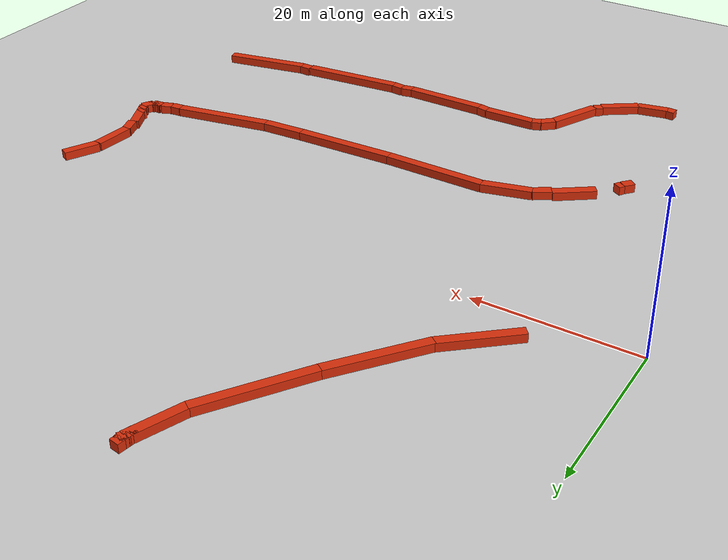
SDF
<sdf version="1.6">
 <world name="default">
  <include><uri>model://ground_plane</uri></include>
  <model name="track_inner_guardrail">
   <static>true</static>
   <link name="seg_025">
    <pose>14.11 -30.42 0.55 0 0 0.8469</pose>
    <collision name="col"><geometry><box><size>1.45 1.20 1.1</size></box></geometry></collision>
    <visual name="vis">
     <geometry><box><size>1.45 1.20 1.1</size></box></geometry>
     <material>
      <ambient>0.35 0.08 0.02 1</ambient>
      <diffuse>0.85 0.18 0.04 1</diffuse>
      <specular>0.2 0.2 0.2 1</specular>
     </material>
    </visual>
   </link>
   <link name="seg_038">
    <pose>14.81 -29.48 0.55 0 0 -2.1153</pose>
    <collision name="col"><geometry><box><size>0.79 1.20 1.1</size></box></geometry></collision>
    <visual name="vis">
     <geometry><box><size>0.79 1.20 1.1</size></box></geometry>
     <material>
      <ambient>0.35 0.08 0.02 1</ambient>
      <diffuse>0.85 0.18 0.04 1</diffuse>
      <specular>0.2 0.2 0.2 1</specular>
     </material>
    </visual>
   </link>
   <link name="seg_054">
    <pose>19.08 -25.47 0.55 0 0 0.6311</pose>
    <collision name="col"><geometry><box><size>5.49 1.20 1.1</size></box></geometry></collision>
    <visual name="vis">
     <geometry><box><size>5.49 1.20 1.1</size></box></geometry>
     <material>
      <ambient>0.35 0.08 0.02 1</ambient>
      <diffuse>0.85 0.18 0.04 1</diffuse>
      <specular>0.2 0.2 0.2 1</specular>
     </material>
    </visual>
   </link>
   <link name="seg_055">
    <pose>22.42 -23.45 0.55 0 0 0.5600</pose>
    <collision name="col"><geometry><box><size>2.43 1.20 1.1</size></box></geometry></collision>
    <visual name="vis">
     <geometry><box><size>2.43 1.20 1.1</size></box></geometry>
     <material>
      <ambient>0.35 0.08 0.02 1</ambient>
      <diffuse>0.85 0.18 0.04 1</diffuse>
      <specular>0.2 0.2 0.2 1</specular>
     </material>
    </visual>
   </link>
   <link name="seg_056">
    <pose>26.50 -22.02 0.55 0 0 0.2502</pose>
    <collision name="col"><geometry><box><size>6.42 1.20 1.1</size></box></geometry></collision>
    <visual name="vis">
     <geometry><box><size>6.42 1.20 1.1</size></box></geometry>
     <material>
      <ambient>0.35 0.08 0.02 1</ambient>
      <diffuse>0.85 0.18 0.04 1</diffuse>
      <specular>0.2 0.2 0.2 1</specular>
     </material>
    </visual>
   </link>
   <link name="seg_057">
    <pose>36.24 -21.32 0.55 0 0 -0.0123</pose>
    <collision name="col"><geometry><box><size>13.50 1.20 1.1</size></box></geometry></collision>
    <visual name="vis">
     <geometry><box><size>13.50 1.20 1.1</size></box></geometry>
     <material>
      <ambient>0.35 0.08 0.02 1</ambient>
      <diffuse>0.85 0.18 0.04 1</diffuse>
      <specular>0.2 0.2 0.2 1</specular>
     </material>
    </visual>
   </link>
   <link name="seg_058">
    <pose>49.57 -21.20 0.55 0 0 0.0306</pose>
    <collision name="col"><geometry><box><size>13.40 1.20 1.1</size></box></geometry></collision>
    <visual name="vis">
     <geometry><box><size>13.40 1.20 1.1</size></box></geometry>
     <material>
      <ambient>0.35 0.08 0.02 1</ambient>
      <diffuse>0.85 0.18 0.04 1</diffuse>
      <specular>0.2 0.2 0.2 1</specular>
     </material>
    </visual>
   </link>
   <link name="seg_059">
    <pose>58.99 -20.84 0.55 0 0 0.0556</pose>
    <collision name="col"><geometry><box><size>5.57 1.20 1.1</size></box></geometry></collision>
    <visual name="vis">
     <geometry><box><size>5.57 1.20 1.1</size></box></geometry>
     <material>
      <ambient>0.35 0.08 0.02 1</ambient>
      <diffuse>0.85 0.18 0.04 1</diffuse>
      <specular>0.2 0.2 0.2 1</specular>
     </material>
    </visual>
   </link>
   <link name="seg_060">
    <pose>68.11 -19.48 0.55 0 0 0.1882</pose>
    <collision name="col"><geometry><box><size>12.91 1.20 1.1</size></box></geometry></collision>
    <visual name="vis">
     <geometry><box><size>12.91 1.20 1.1</size></box></geometry>
     <material>
      <ambient>0.35 0.08 0.02 1</ambient>
      <diffuse>0.85 0.18 0.04 1</diffuse>
      <specular>0.2 0.2 0.2 1</specular>
     </material>
    </visual>
   </link>
   <link name="seg_061">
    <pose>75.18 -18.21 0.55 0 0 0.0849</pose>
    <collision name="col"><geometry><box><size>1.46 1.20 1.1</size></box></geometry></collision>
    <visual name="vis">
     <geometry><box><size>1.46 1.20 1.1</size></box></geometry>
     <material>
      <ambient>0.35 0.08 0.02 1</ambient>
      <diffuse>0.85 0.18 0.04 1</diffuse>
      <specular>0.2 0.2 0.2 1</specular>
     </material>
    </visual>
   </link>
   <link name="seg_062">
    <pose>76.58 -17.85 0.55 0 0 0.4251</pose>
    <collision name="col"><geometry><box><size>1.47 1.20 1.1</size></box></geometry></collision>
    <visual name="vis">
     <geometry><box><size>1.47 1.20 1.1</size></box></geometry>
     <material>
      <ambient>0.35 0.08 0.02 1</ambient>
      <diffuse>0.85 0.18 0.04 1</diffuse>
      <specular>0.2 0.2 0.2 1</specular>
     </material>
    </visual>
   </link>
   <link name="seg_063">
    <pose>77.98 -17.48 0.55 0 0 0.0821</pose>
    <collision name="col"><geometry><box><size>1.47 1.20 1.1</size></box></geometry></collision>
    <visual name="vis">
     <geometry><box><size>1.47 1.20 1.1</size></box></geometry>
     <material>
      <ambient>0.35 0.08 0.02 1</ambient>
      <diffuse>0.85 0.18 0.04 1</diffuse>
      <specular>0.2 0.2 0.2 1</specular>
     </material>
    </visual>
   </link>
   <link name="seg_065">
    <pose>78.41 -14.64 0.55 0 0 -1.7864</pose>
    <collision name="col"><geometry><box><size>0.67 1.20 1.1</size></box></geometry></collision>
    <visual name="vis">
     <geometry><box><size>0.67 1.20 1.1</size></box></geometry>
     <material>
      <ambient>0.35 0.08 0.02 1</ambient>
      <diffuse>0.85 0.18 0.04 1</diffuse>
      <specular>0.2 0.2 0.2 1</specular>
     </material>
    </visual>
   </link>
   <link name="seg_066">
    <pose>78.95 -15.54 0.55 0 0 -1.7864</pose>
    <collision name="col"><geometry><box><size>0.67 1.20 1.1</size></box></geometry></collision>
    <visual name="vis">
     <geometry><box><size>0.67 1.20 1.1</size></box></geometry>
     <material>
      <ambient>0.35 0.08 0.02 1</ambient>
      <diffuse>0.85 0.18 0.04 1</diffuse>
      <specular>0.2 0.2 0.2 1</specular>
     </material>
    </visual>
   </link>
   <link name="seg_068">
    <pose>78.60 -17.14 0.55 0 0 -1.7864</pose>
    <collision name="col"><geometry><box><size>0.67 1.20 1.1</size></box></geometry></collision>
    <visual name="vis">
     <geometry><box><size>0.67 1.20 1.1</size></box></geometry>
     <material>
      <ambient>0.35 0.08 0.02 1</ambient>
      <diffuse>0.85 0.18 0.04 1</diffuse>
      <specular>0.2 0.2 0.2 1</specular>
     </material>
    </visual>
   </link>
   <link name="seg_069">
    <pose>77.83 -17.30 0.55 0 0 -1.7864</pose>
    <collision name="col"><geometry><box><size>0.67 1.20 1.1</size></box></geometry></collision>
    <visual name="vis">
     <geometry><box><size>0.67 1.20 1.1</size></box></geometry>
     <material>
      <ambient>0.35 0.08 0.02 1</ambient>
      <diffuse>0.85 0.18 0.04 1</diffuse>
      <specular>0.2 0.2 0.2 1</specular>
     </material>
    </visual>
   </link>
   <link name="seg_070">
    <pose>79.11 -16.61 0.55 0 0 1.0440</pose>
    <collision name="col"><geometry><box><size>1.47 1.20 1.1</size></box></geometry></collision>
    <visual name="vis">
     <geometry><box><size>1.47 1.20 1.1</size></box></geometry>
     <material>
      <ambient>0.35 0.08 0.02 1</ambient>
      <diffuse>0.85 0.18 0.04 1</diffuse>
      <specular>0.2 0.2 0.2 1</specular>
     </material>
    </visual>
   </link>
   <link name="seg_071">
    <pose>78.22 -13.88 0.55 0 0 2.0104</pose>
    <collision name="col"><geometry><box><size>5.07 1.20 1.1</size></box></geometry></collision>
    <visual name="vis">
     <geometry><box><size>5.07 1.20 1.1</size></box></geometry>
     <material>
      <ambient>0.35 0.08 0.02 1</ambient>
      <diffuse>0.85 0.18 0.04 1</diffuse>
      <specular>0.2 0.2 0.2 1</specular>
     </material>
    </visual>
   </link>
   <link name="seg_072">
    <pose>77.04 -10.53 0.55 0 0 1.9129</pose>
    <collision name="col"><geometry><box><size>2.26 1.20 1.1</size></box></geometry></collision>
    <visual name="vis">
     <geometry><box><size>2.26 1.20 1.1</size></box></geometry>
     <material>
      <ambient>0.35 0.08 0.02 1</ambient>
      <diffuse>0.85 0.18 0.04 1</diffuse>
      <specular>0.2 0.2 0.2 1</specular>
     </material>
    </visual>
   </link>
   <link name="seg_073">
    <pose>76.90 -7.02 0.55 0 0 1.4836</pose>
    <collision name="col"><geometry><box><size>5.14 1.20 1.1</size></box></geometry></collision>
    <visual name="vis">
     <geometry><box><size>5.14 1.20 1.1</size></box></geometry>
     <material>
      <ambient>0.35 0.08 0.02 1</ambient>
      <diffuse>0.85 0.18 0.04 1</diffuse>
      <specular>0.2 0.2 0.2 1</specular>
     </material>
    </visual>
   </link>
   <link name="seg_074">
    <pose>78.13 -2.39 0.55 0 0 1.1110</pose>
    <collision name="col"><geometry><box><size>4.65 1.20 1.1</size></box></geometry></collision>
    <visual name="vis">
     <geometry><box><size>4.65 1.20 1.1</size></box></geometry>
     <material>
      <ambient>0.35 0.08 0.02 1</ambient>
      <diffuse>0.85 0.18 0.04 1</diffuse>
      <specular>0.2 0.2 0.2 1</specular>
     </material>
    </visual>
   </link>
   <link name="seg_130">
    <pose>36.12 36.92 0.55 0 0 -2.1415</pose>
    <collision name="col"><geometry><box><size>0.72 1.20 1.1</size></box></geometry></collision>
    <visual name="vis">
     <geometry><box><size>0.72 1.20 1.1</size></box></geometry>
     <material>
      <ambient>0.35 0.08 0.02 1</ambient>
      <diffuse>0.85 0.18 0.04 1</diffuse>
      <specular>0.2 0.2 0.2 1</specular>
     </material>
    </visual>
   </link>
   <link name="seg_131">
    <pose>35.94 36.52 0.55 0 0 -1.6311</pose>
    <collision name="col"><geometry><box><size>0.43 1.20 1.1</size></box></geometry></collision>
    <visual name="vis">
     <geometry><box><size>0.43 1.20 1.1</size></box></geometry>
     <material>
      <ambient>0.35 0.08 0.02 1</ambient>
      <diffuse>0.85 0.18 0.04 1</diffuse>
      <specular>0.2 0.2 0.2 1</specular>
     </material>
    </visual>
   </link>
   <link name="seg_132">
    <pose>35.89 36.18 0.55 0 0 -1.8319</pose>
    <collision name="col"><geometry><box><size>0.49 1.20 1.1</size></box></geometry></collision>
    <visual name="vis">
     <geometry><box><size>0.49 1.20 1.1</size></box></geometry>
     <material>
      <ambient>0.35 0.08 0.02 1</ambient>
      <diffuse>0.85 0.18 0.04 1</diffuse>
      <specular>0.2 0.2 0.2 1</specular>
     </material>
    </visual>
   </link>
   <link name="seg_133">
    <pose>35.79 35.82 0.55 0 0 -1.8319</pose>
    <collision name="col"><geometry><box><size>0.49 1.20 1.1</size></box></geometry></collision>
    <visual name="vis">
     <geometry><box><size>0.49 1.20 1.1</size></box></geometry>
     <material>
      <ambient>0.35 0.08 0.02 1</ambient>
      <diffuse>0.85 0.18 0.04 1</diffuse>
      <specular>0.2 0.2 0.2 1</specular>
     </material>
    </visual>
   </link>
   <link name="seg_134">
    <pose>35.67 35.60 0.55 0 0 -2.5728</pose>
    <collision name="col"><geometry><box><size>0.18 1.20 1.1</size></box></geometry></collision>
    <visual name="vis">
     <geometry><box><size>0.18 1.20 1.1</size></box></geometry>
     <material>
      <ambient>0.35 0.08 0.02 1</ambient>
      <diffuse>0.85 0.18 0.04 1</diffuse>
      <specular>0.2 0.2 0.2 1</specular>
     </material>
    </visual>
   </link>
   <link name="seg_147">
    <pose>35.95 36.58 0.55 0 0 1.4113</pose>
    <collision name="col"><geometry><box><size>1.01 1.20 1.1</size></box></geometry></collision>
    <visual name="vis">
     <geometry><box><size>1.01 1.20 1.1</size></box></geometry>
     <material>
      <ambient>0.35 0.08 0.02 1</ambient>
      <diffuse>0.85 0.18 0.04 1</diffuse>
      <specular>0.2 0.2 0.2 1</specular>
     </material>
    </visual>
   </link>
   <link name="seg_148">
    <pose>36.09 37.45 0.55 0 0 1.4113</pose>
    <collision name="col"><geometry><box><size>1.01 1.20 1.1</size></box></geometry></collision>
    <visual name="vis">
     <geometry><box><size>1.01 1.20 1.1</size></box></geometry>
     <material>
      <ambient>0.35 0.08 0.02 1</ambient>
      <diffuse>0.85 0.18 0.04 1</diffuse>
      <specular>0.2 0.2 0.2 1</specular>
     </material>
    </visual>
   </link>
   <link name="seg_166">
    <pose>36.10 37.09 0.55 0 0 -1.5708</pose>
    <collision name="col"><geometry><box><size>0.74 1.20 1.1</size></box></geometry></collision>
    <visual name="vis">
     <geometry><box><size>0.74 1.20 1.1</size></box></geometry>
     <material>
      <ambient>0.35 0.08 0.02 1</ambient>
      <diffuse>0.85 0.18 0.04 1</diffuse>
      <specular>0.2 0.2 0.2 1</specular>
     </material>
    </visual>
   </link>
   <link name="seg_167">
    <pose>34.93 33.59 0.55 0 0 -1.9290</pose>
    <collision name="col"><geometry><box><size>6.78 1.20 1.1</size></box></geometry></collision>
    <visual name="vis">
     <geometry><box><size>6.78 1.20 1.1</size></box></geometry>
     <material>
      <ambient>0.35 0.08 0.02 1</ambient>
      <diffuse>0.85 0.18 0.04 1</diffuse>
      <specular>0.2 0.2 0.2 1</specular>
     </material>
    </visual>
   </link>
   <link name="seg_168">
    <pose>30.05 24.94 0.55 0 0 -2.1610</pose>
    <collision name="col"><geometry><box><size>13.45 1.20 1.1</size></box></geometry></collision>
    <visual name="vis">
     <geometry><box><size>13.45 1.20 1.1</size></box></geometry>
     <material>
      <ambient>0.35 0.08 0.02 1</ambient>
      <diffuse>0.85 0.18 0.04 1</diffuse>
      <specular>0.2 0.2 0.2 1</specular>
     </material>
    </visual>
   </link>
   <link name="seg_169">
    <pose>22.66 14.58 0.55 0 0 -2.2231</pose>
    <collision name="col"><geometry><box><size>12.24 1.20 1.1</size></box></geometry></collision>
    <visual name="vis">
     <geometry><box><size>12.24 1.20 1.1</size></box></geometry>
     <material>
      <ambient>0.35 0.08 0.02 1</ambient>
      <diffuse>0.85 0.18 0.04 1</diffuse>
      <specular>0.2 0.2 0.2 1</specular>
     </material>
    </visual>
   </link>
   <link name="seg_170">
    <pose>15.33 6.60 0.55 0 0 -2.4264</pose>
    <collision name="col"><geometry><box><size>9.79 1.20 1.1</size></box></geometry></collision>
    <visual name="vis">
     <geometry><box><size>9.79 1.20 1.1</size></box></geometry>
     <material>
      <ambient>0.35 0.08 0.02 1</ambient>
      <diffuse>0.85 0.18 0.04 1</diffuse>
      <specular>0.2 0.2 0.2 1</specular>
     </material>
    </visual>
   </link>
  </model>
  <model name="track_outer_guardrail">
   <static>true</static>
   <link name="seg_015">
    <pose>16.49 -52.47 0.55 0 0 -0.0766</pose>
    <collision name="col"><geometry><box><size>1.19 1.20 1.1</size></box></geometry></collision>
    <visual name="vis">
     <geometry><box><size>1.19 1.20 1.1</size></box></geometry>
     <material>
      <ambient>0.35 0.08 0.02 1</ambient>
      <diffuse>0.85 0.18 0.04 1</diffuse>
      <specular>0.2 0.2 0.2 1</specular>
     </material>
    </visual>
   </link>
   <link name="seg_016">
    <pose>18.97 -52.12 0.55 0 0 0.1999</pose>
    <collision name="col"><geometry><box><size>4.09 1.20 1.1</size></box></geometry></collision>
    <visual name="vis">
     <geometry><box><size>4.09 1.20 1.1</size></box></geometry>
     <material>
      <ambient>0.35 0.08 0.02 1</ambient>
      <diffuse>0.85 0.18 0.04 1</diffuse>
      <specular>0.2 0.2 0.2 1</specular>
     </material>
    </visual>
   </link>
   <link name="seg_017">
    <pose>23.06 -50.26 0.55 0 0 0.6083</pose>
    <collision name="col"><geometry><box><size>5.17 1.20 1.1</size></box></geometry></collision>
    <visual name="vis">
     <geometry><box><size>5.17 1.20 1.1</size></box></geometry>
     <material>
      <ambient>0.35 0.08 0.02 1</ambient>
      <diffuse>0.85 0.18 0.04 1</diffuse>
      <specular>0.2 0.2 0.2 1</specular>
     </material>
    </visual>
   </link>
   <link name="seg_018">
    <pose>25.44 -48.28 0.55 0 0 0.6561</pose>
    <collision name="col"><geometry><box><size>1.14 1.20 1.1</size></box></geometry></collision>
    <visual name="vis">
     <geometry><box><size>1.14 1.20 1.1</size></box></geometry>
     <material>
      <ambient>0.35 0.08 0.02 1</ambient>
      <diffuse>0.85 0.18 0.04 1</diffuse>
      <specular>0.2 0.2 0.2 1</specular>
     </material>
    </visual>
   </link>
   <link name="seg_019">
    <pose>27.46 -44.66 0.55 0 0 1.1328</pose>
    <collision name="col"><geometry><box><size>7.25 1.20 1.1</size></box></geometry></collision>
    <visual name="vis">
     <geometry><box><size>7.25 1.20 1.1</size></box></geometry>
     <material>
      <ambient>0.35 0.08 0.02 1</ambient>
      <diffuse>0.85 0.18 0.04 1</diffuse>
      <specular>0.2 0.2 0.2 1</specular>
     </material>
    </visual>
   </link>
   <link name="seg_020">
    <pose>29.68 -40.82 0.55 0 0 0.7172</pose>
    <collision name="col"><geometry><box><size>2.00 1.20 1.1</size></box></geometry></collision>
    <visual name="vis">
     <geometry><box><size>2.00 1.20 1.1</size></box></geometry>
     <material>
      <ambient>0.35 0.08 0.02 1</ambient>
      <diffuse>0.85 0.18 0.04 1</diffuse>
      <specular>0.2 0.2 0.2 1</specular>
     </material>
    </visual>
   </link>
   <link name="seg_021">
    <pose>30.88 -40.01 0.55 0 0 0.3690</pose>
    <collision name="col"><geometry><box><size>1.18 1.20 1.1</size></box></geometry></collision>
    <visual name="vis">
     <geometry><box><size>1.18 1.20 1.1</size></box></geometry>
     <material>
      <ambient>0.35 0.08 0.02 1</ambient>
      <diffuse>0.85 0.18 0.04 1</diffuse>
      <specular>0.2 0.2 0.2 1</specular>
     </material>
    </visual>
   </link>
   <link name="seg_022">
    <pose>34.75 -39.77 0.55 0 0 0.0143</pose>
    <collision name="col"><geometry><box><size>6.74 1.20 1.1</size></box></geometry></collision>
    <visual name="vis">
     <geometry><box><size>6.74 1.20 1.1</size></box></geometry>
     <material>
      <ambient>0.35 0.08 0.02 1</ambient>
      <diffuse>0.85 0.18 0.04 1</diffuse>
      <specular>0.2 0.2 0.2 1</specular>
     </material>
    </visual>
   </link>
   <link name="seg_023">
    <pose>38.84 -39.87 0.55 0 0 -0.2045</pose>
    <collision name="col"><geometry><box><size>1.47 1.20 1.1</size></box></geometry></collision>
    <visual name="vis">
     <geometry><box><size>1.47 1.20 1.1</size></box></geometry>
     <material>
      <ambient>0.35 0.08 0.02 1</ambient>
      <diffuse>0.85 0.18 0.04 1</diffuse>
      <specular>0.2 0.2 0.2 1</specular>
     </material>
    </visual>
   </link>
   <link name="seg_024">
    <pose>44.86 -40.05 0.55 0 0 -0.0067</pose>
    <collision name="col"><geometry><box><size>10.71 1.20 1.1</size></box></geometry></collision>
    <visual name="vis">
     <geometry><box><size>10.71 1.20 1.1</size></box></geometry>
     <material>
      <ambient>0.35 0.08 0.02 1</ambient>
      <diffuse>0.85 0.18 0.04 1</diffuse>
      <specular>0.2 0.2 0.2 1</specular>
     </material>
    </visual>
   </link>
   <link name="seg_025">
    <pose>50.92 -39.94 0.55 0 0 0.1957</pose>
    <collision name="col"><geometry><box><size>1.56 1.20 1.1</size></box></geometry></collision>
    <visual name="vis">
     <geometry><box><size>1.56 1.20 1.1</size></box></geometry>
     <material>
      <ambient>0.35 0.08 0.02 1</ambient>
      <diffuse>0.85 0.18 0.04 1</diffuse>
      <specular>0.2 0.2 0.2 1</specular>
     </material>
    </visual>
   </link>
   <link name="seg_026">
    <pose>52.47 -39.87 0.55 0 0 -0.1130</pose>
    <collision name="col"><geometry><box><size>1.57 1.20 1.1</size></box></geometry></collision>
    <visual name="vis">
     <geometry><box><size>1.57 1.20 1.1</size></box></geometry>
     <material>
      <ambient>0.35 0.08 0.02 1</ambient>
      <diffuse>0.85 0.18 0.04 1</diffuse>
      <specular>0.2 0.2 0.2 1</specular>
     </material>
    </visual>
   </link>
   <link name="seg_027">
    <pose>59.94 -39.34 0.55 0 0 0.0922</pose>
    <collision name="col"><geometry><box><size>13.55 1.20 1.1</size></box></geometry></collision>
    <visual name="vis">
     <geometry><box><size>13.55 1.20 1.1</size></box></geometry>
     <material>
      <ambient>0.35 0.08 0.02 1</ambient>
      <diffuse>0.85 0.18 0.04 1</diffuse>
      <specular>0.2 0.2 0.2 1</specular>
     </material>
    </visual>
   </link>
   <link name="seg_028">
    <pose>67.37 -38.51 0.55 0 0 -0.0461</pose>
    <collision name="col"><geometry><box><size>1.55 1.20 1.1</size></box></geometry></collision>
    <visual name="vis">
     <geometry><box><size>1.55 1.20 1.1</size></box></geometry>
     <material>
      <ambient>0.35 0.08 0.02 1</ambient>
      <diffuse>0.85 0.18 0.04 1</diffuse>
      <specular>0.2 0.2 0.2 1</specular>
     </material>
    </visual>
   </link>
   <link name="seg_029">
    <pose>73.67 -37.46 0.55 0 0 0.1952</pose>
    <collision name="col"><geometry><box><size>11.38 1.20 1.1</size></box></geometry></collision>
    <visual name="vis">
     <geometry><box><size>11.38 1.20 1.1</size></box></geometry>
     <material>
      <ambient>0.35 0.08 0.02 1</ambient>
      <diffuse>0.85 0.18 0.04 1</diffuse>
      <specular>0.2 0.2 0.2 1</specular>
     </material>
    </visual>
   </link>
  </model>
 </world>
</sdf>
